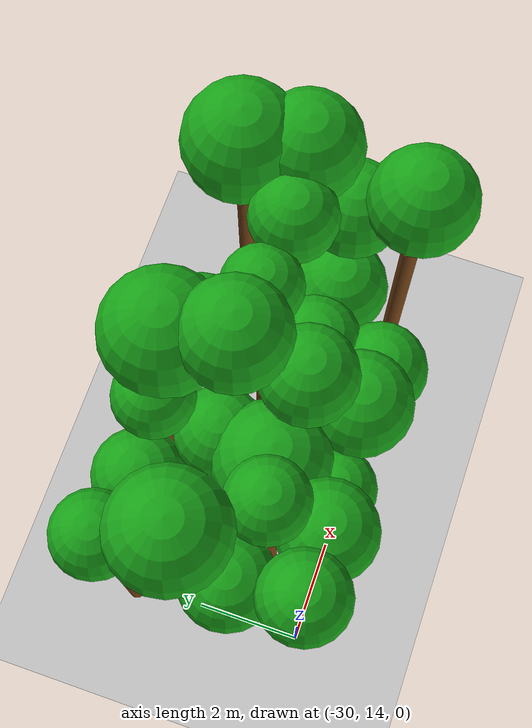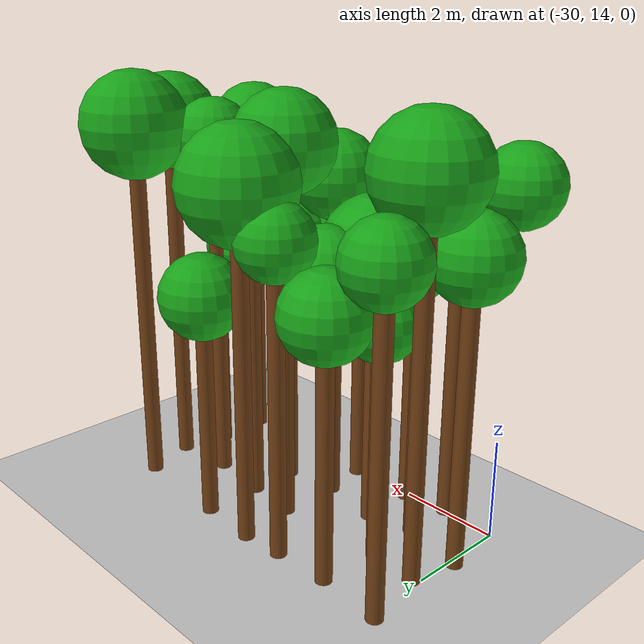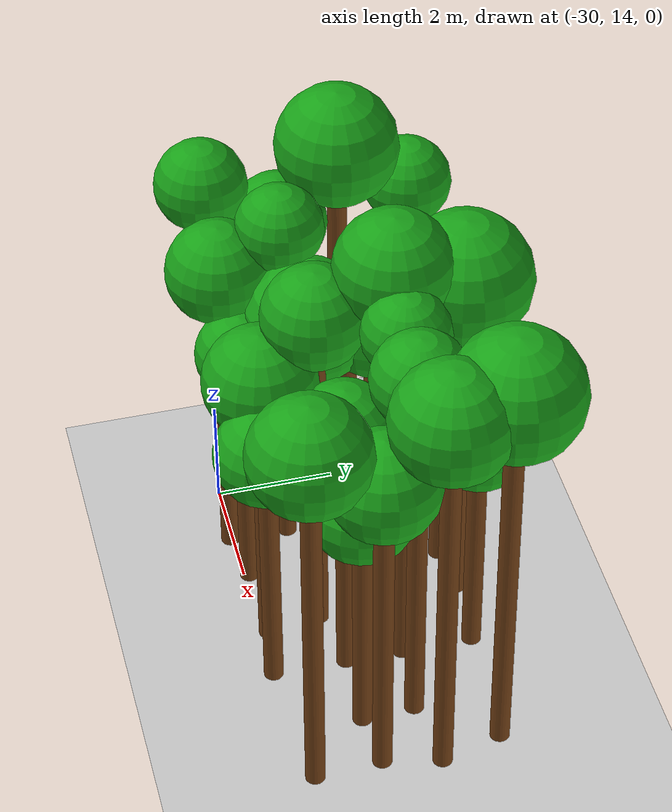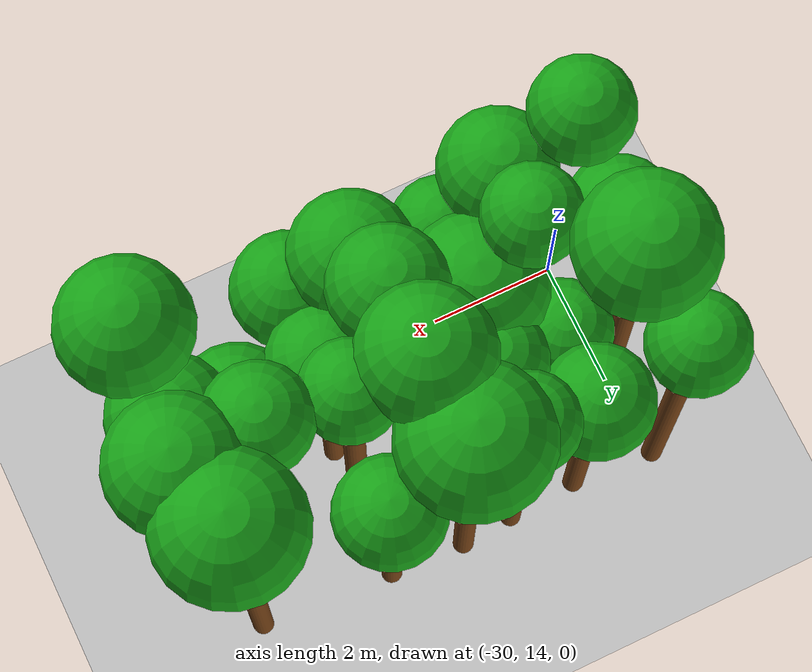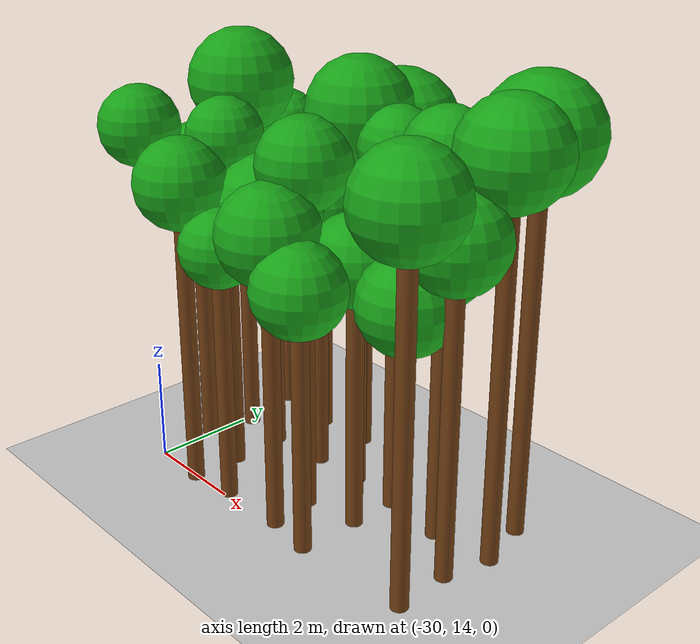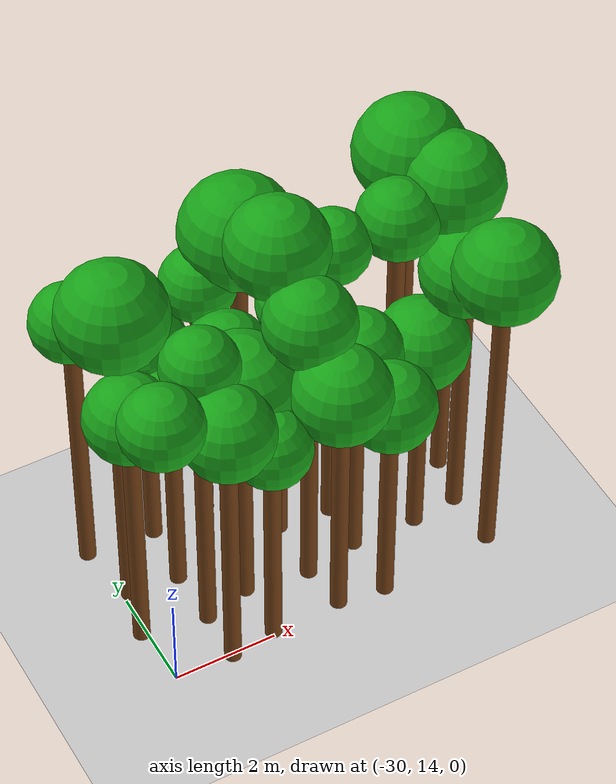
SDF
<sdf version="1.6">
 <world name="forest_world">
  <include><uri>model://sun</uri></include>
  <include><uri>model://ground_plane</uri></include>
  <model name="tree_40_leaf">
   <static>true</static>
   <pose>-30.07 13.97 6.78 0 0 0</pose>
   <link name="link">
    <collision name="collision"><geometry><sphere><radius>0.75</radius></sphere></geometry></collision>
    <visual name="visual">
     <geometry><sphere><radius>0.75</radius></sphere></geometry>
     <material><ambient>0.05 0.45 0.05 1</ambient><diffuse>0.10 0.65 0.10 1</diffuse></material>
    </visual>
   </link>
  </model>
  <model name="tree_41_trunk">
   <static>true</static>
   <pose>-30.09 15.20 2.66 0 0 0</pose>
   <link name="link">
    <collision name="collision">
     <geometry><cylinder><radius>0.16</radius><length>5.33</length></cylinder></geometry>
    </collision>
    <visual name="visual">
     <geometry><cylinder><radius>0.16</radius><length>5.33</length></cylinder></geometry>
     <material><ambient>0.35 0.20 0.05 1</ambient><diffuse>0.45 0.25 0.08 1</diffuse></material>
    </visual>
   </link>
  </model>
  <model name="tree_41_leaf">
   <static>true</static>
   <pose>-30.09 15.20 5.81 0 0 0</pose>
   <link name="link">
    <collision name="collision"><geometry><sphere><radius>0.81</radius></sphere></geometry></collision>
    <visual name="visual">
     <geometry><sphere><radius>0.81</radius></sphere></geometry>
     <material><ambient>0.05 0.45 0.05 1</ambient><diffuse>0.10 0.65 0.10 1</diffuse></material>
    </visual>
   </link>
  </model>
  <model name="tree_42_trunk">
   <static>true</static>
   <pose>-29.87 16.13 3.35 0 0 0</pose>
   <link name="link">
    <collision name="collision">
     <geometry><cylinder><radius>0.16</radius><length>6.71</length></cylinder></geometry>
    </collision>
    <visual name="visual">
     <geometry><cylinder><radius>0.16</radius><length>6.71</length></cylinder></geometry>
     <material><ambient>0.35 0.20 0.05 1</ambient><diffuse>0.45 0.25 0.08 1</diffuse></material>
    </visual>
   </link>
  </model>
  <model name="tree_42_leaf">
   <static>true</static>
   <pose>-29.87 16.13 7.31 0 0 0</pose>
   <link name="link">
    <collision name="collision"><geometry><sphere><radius>1.00</radius></sphere></geometry></collision>
    <visual name="visual">
     <geometry><sphere><radius>1.00</radius></sphere></geometry>
     <material><ambient>0.05 0.45 0.05 1</ambient><diffuse>0.10 0.65 0.10 1</diffuse></material>
    </visual>
   </link>
  </model>
  <model name="tree_43_trunk">
   <static>true</static>
   <pose>-30.13 17.35 2.88 0 0 0</pose>
   <link name="link">
    <collision name="collision">
     <geometry><cylinder><radius>0.16</radius><length>5.76</length></cylinder></geometry>
    </collision>
    <visual name="visual">
     <geometry><cylinder><radius>0.16</radius><length>5.76</length></cylinder></geometry>
     <material><ambient>0.35 0.20 0.05 1</ambient><diffuse>0.45 0.25 0.08 1</diffuse></material>
    </visual>
   </link>
  </model>
  <model name="tree_43_leaf">
   <static>true</static>
   <pose>-30.13 17.35 6.19 0 0 0</pose>
   <link name="link">
    <collision name="collision"><geometry><sphere><radius>0.73</radius></sphere></geometry></collision>
    <visual name="visual">
     <geometry><sphere><radius>0.73</radius></sphere></geometry>
     <material><ambient>0.05 0.45 0.05 1</ambient><diffuse>0.10 0.65 0.10 1</diffuse></material>
    </visual>
   </link>
  </model>
  <model name="tree_95_trunk">
   <static>true</static>
   <pose>-28.87 13.97 2.74 0 0 0</pose>
   <link name="link">
    <collision name="collision">
     <geometry><cylinder><radius>0.16</radius><length>5.47</length></cylinder></geometry>
    </collision>
    <visual name="visual">
     <geometry><cylinder><radius>0.16</radius><length>5.47</length></cylinder></geometry>
     <material><ambient>0.35 0.20 0.05 1</ambient><diffuse>0.45 0.25 0.08 1</diffuse></material>
    </visual>
   </link>
  </model>
  <model name="tree_95_leaf">
   <static>true</static>
   <pose>-28.87 13.97 5.98 0 0 0</pose>
   <link name="link">
    <collision name="collision"><geometry><sphere><radius>0.85</radius></sphere></geometry></collision>
    <visual name="visual">
     <geometry><sphere><radius>0.85</radius></sphere></geometry>
     <material><ambient>0.05 0.45 0.05 1</ambient><diffuse>0.10 0.65 0.10 1</diffuse></material>
    </visual>
   </link>
  </model>
  <model name="tree_96_trunk">
   <static>true</static>
   <pose>-28.86 14.96 3.12 0 0 0</pose>
   <link name="link">
    <collision name="collision">
     <geometry><cylinder><radius>0.16</radius><length>6.24</length></cylinder></geometry>
    </collision>
    <visual name="visual">
     <geometry><cylinder><radius>0.16</radius><length>6.24</length></cylinder></geometry>
     <material><ambient>0.35 0.20 0.05 1</ambient><diffuse>0.45 0.25 0.08 1</diffuse></material>
    </visual>
   </link>
  </model>
  <model name="tree_96_leaf">
   <static>true</static>
   <pose>-28.86 14.96 6.67 0 0 0</pose>
   <link name="link">
    <collision name="collision"><geometry><sphere><radius>0.71</radius></sphere></geometry></collision>
    <visual name="visual">
     <geometry><sphere><radius>0.71</radius></sphere></geometry>
     <material><ambient>0.05 0.45 0.05 1</ambient><diffuse>0.10 0.65 0.10 1</diffuse></material>
    </visual>
   </link>
  </model>
  <model name="tree_97_trunk">
   <static>true</static>
   <pose>-28.91 16.05 2.09 0 0 0</pose>
   <link name="link">
    <collision name="collision">
     <geometry><cylinder><radius>0.16</radius><length>4.18</length></cylinder></geometry>
    </collision>
    <visual name="visual">
     <geometry><cylinder><radius>0.16</radius><length>4.18</length></cylinder></geometry>
     <material><ambient>0.35 0.20 0.05 1</ambient><diffuse>0.45 0.25 0.08 1</diffuse></material>
    </visual>
   </link>
  </model>
  <model name="tree_97_leaf">
   <static>true</static>
   <pose>-28.91 16.05 4.61 0 0 0</pose>
   <link name="link">
    <collision name="collision"><geometry><sphere><radius>0.72</radius></sphere></geometry></collision>
    <visual name="visual">
     <geometry><sphere><radius>0.72</radius></sphere></geometry>
     <material><ambient>0.05 0.45 0.05 1</ambient><diffuse>0.10 0.65 0.10 1</diffuse></material>
    </visual>
   </link>
  </model>
  <model name="tree_98_trunk">
   <static>true</static>
   <pose>-28.81 17.25 2.24 0 0 0</pose>
   <link name="link">
    <collision name="collision">
     <geometry><cylinder><radius>0.16</radius><length>4.49</length></cylinder></geometry>
    </collision>
    <visual name="visual">
     <geometry><cylinder><radius>0.16</radius><length>4.49</length></cylinder></geometry>
     <material><ambient>0.35 0.20 0.05 1</ambient><diffuse>0.45 0.25 0.08 1</diffuse></material>
    </visual>
   </link>
  </model>
  <model name="tree_98_leaf">
   <static>true</static>
   <pose>-28.81 17.25 4.98 0 0 0</pose>
   <link name="link">
    <collision name="collision"><geometry><sphere><radius>0.82</radius></sphere></geometry></collision>
    <visual name="visual">
     <geometry><sphere><radius>0.82</radius></sphere></geometry>
     <material><ambient>0.05 0.45 0.05 1</ambient><diffuse>0.10 0.65 0.10 1</diffuse></material>
    </visual>
   </link>
  </model>
  <model name="tree_150_trunk">
   <static>true</static>
   <pose>-27.97 14.10 2.28 0 0 0</pose>
   <link name="link">
    <collision name="collision">
     <geometry><cylinder><radius>0.16</radius><length>4.56</length></cylinder></geometry>
    </collision>
    <visual name="visual">
     <geometry><cylinder><radius>0.16</radius><length>4.56</length></cylinder></geometry>
     <material><ambient>0.35 0.20 0.05 1</ambient><diffuse>0.45 0.25 0.08 1</diffuse></material>
    </visual>
   </link>
  </model>
  <model name="tree_150_leaf">
   <static>true</static>
   <pose>-27.97 14.10 5.00 0 0 0</pose>
   <link name="link">
    <collision name="collision"><geometry><sphere><radius>0.73</radius></sphere></geometry></collision>
    <visual name="visual">
     <geometry><sphere><radius>0.73</radius></sphere></geometry>
     <material><ambient>0.05 0.45 0.05 1</ambient><diffuse>0.10 0.65 0.10 1</diffuse></material>
    </visual>
   </link>
  </model>
  <model name="tree_151_trunk">
   <static>true</static>
   <pose>-27.96 15.19 2.43 0 0 0</pose>
   <link name="link">
    <collision name="collision">
     <geometry><cylinder><radius>0.16</radius><length>4.85</length></cylinder></geometry>
    </collision>
    <visual name="visual">
     <geometry><cylinder><radius>0.16</radius><length>4.85</length></cylinder></geometry>
     <material><ambient>0.35 0.20 0.05 1</ambient><diffuse>0.45 0.25 0.08 1</diffuse></material>
    </visual>
   </link>
  </model>
  <model name="tree_151_leaf">
   <static>true</static>
   <pose>-27.96 15.19 5.47 0 0 0</pose>
   <link name="link">
    <collision name="collision"><geometry><sphere><radius>1.03</radius></sphere></geometry></collision>
    <visual name="visual">
     <geometry><sphere><radius>1.03</radius></sphere></geometry>
     <material><ambient>0.05 0.45 0.05 1</ambient><diffuse>0.10 0.65 0.10 1</diffuse></material>
    </visual>
   </link>
  </model>
  <model name="tree_152_trunk">
   <static>true</static>
   <pose>-27.73 16.19 2.40 0 0 0</pose>
   <link name="link">
    <collision name="collision">
     <geometry><cylinder><radius>0.16</radius><length>4.81</length></cylinder></geometry>
    </collision>
    <visual name="visual">
     <geometry><cylinder><radius>0.16</radius><length>4.81</length></cylinder></geometry>
     <material><ambient>0.35 0.20 0.05 1</ambient><diffuse>0.45 0.25 0.08 1</diffuse></material>
    </visual>
   </link>
  </model>
  <model name="tree_152_leaf">
   <static>true</static>
   <pose>-27.73 16.19 5.28 0 0 0</pose>
   <link name="link">
    <collision name="collision"><geometry><sphere><radius>0.79</radius></sphere></geometry></collision>
    <visual name="visual">
     <geometry><sphere><radius>0.79</radius></sphere></geometry>
     <material><ambient>0.05 0.45 0.05 1</ambient><diffuse>0.10 0.65 0.10 1</diffuse></material>
    </visual>
   </link>
  </model>
  <model name="tree_153_trunk">
   <static>true</static>
   <pose>-27.69 17.32 2.78 0 0 0</pose>
   <link name="link">
    <collision name="collision">
     <geometry><cylinder><radius>0.16</radius><length>5.55</length></cylinder></geometry>
    </collision>
    <visual name="visual">
     <geometry><cylinder><radius>0.16</radius><length>5.55</length></cylinder></geometry>
     <material><ambient>0.35 0.20 0.05 1</ambient><diffuse>0.45 0.25 0.08 1</diffuse></material>
    </visual>
   </link>
  </model>
  <model name="tree_153_leaf">
   <static>true</static>
   <pose>-27.69 17.32 5.98 0 0 0</pose>
   <link name="link">
    <collision name="collision"><geometry><sphere><radius>0.71</radius></sphere></geometry></collision>
    <visual name="visual">
     <geometry><sphere><radius>0.71</radius></sphere></geometry>
     <material><ambient>0.05 0.45 0.05 1</ambient><diffuse>0.10 0.65 0.10 1</diffuse></material>
    </visual>
   </link>
  </model>
  <model name="tree_205_trunk">
   <static>true</static>
   <pose>-26.61 14.12 2.54 0 0 0</pose>
   <link name="link">
    <collision name="collision">
     <geometry><cylinder><radius>0.16</radius><length>5.07</length></cylinder></geometry>
    </collision>
    <visual name="visual">
     <geometry><cylinder><radius>0.16</radius><length>5.07</length></cylinder></geometry>
     <material><ambient>0.35 0.20 0.05 1</ambient><diffuse>0.45 0.25 0.08 1</diffuse></material>
    </visual>
   </link>
  </model>
  <model name="tree_205_leaf">
   <static>true</static>
   <pose>-26.61 14.12 5.61 0 0 0</pose>
   <link name="link">
    <collision name="collision"><geometry><sphere><radius>0.91</radius></sphere></geometry></collision>
    <visual name="visual">
     <geometry><sphere><radius>0.91</radius></sphere></geometry>
     <material><ambient>0.05 0.45 0.05 1</ambient><diffuse>0.10 0.65 0.10 1</diffuse></material>
    </visual>
   </link>
  </model>
  <model name="tree_206_trunk">
   <static>true</static>
   <pose>-26.74 15.01 3.05 0 0 0</pose>
   <link name="link">
    <collision name="collision">
     <geometry><cylinder><radius>0.16</radius><length>6.10</length></cylinder></geometry>
    </collision>
    <visual name="visual">
     <geometry><cylinder><radius>0.16</radius><length>6.10</length></cylinder></geometry>
     <material><ambient>0.35 0.20 0.05 1</ambient><diffuse>0.45 0.25 0.08 1</diffuse></material>
    </visual>
   </link>
  </model>
  <model name="tree_206_leaf">
   <static>true</static>
   <pose>-26.74 15.01 6.61 0 0 0</pose>
   <link name="link">
    <collision name="collision"><geometry><sphere><radius>0.84</radius></sphere></geometry></collision>
    <visual name="visual">
     <geometry><sphere><radius>0.84</radius></sphere></geometry>
     <material><ambient>0.05 0.45 0.05 1</ambient><diffuse>0.10 0.65 0.10 1</diffuse></material>
    </visual>
   </link>
  </model>
  <model name="tree_207_trunk">
   <static>true</static>
   <pose>-26.70 16.23 3.38 0 0 0</pose>
   <link name="link">
    <collision name="collision">
     <geometry><cylinder><radius>0.16</radius><length>6.77</length></cylinder></geometry>
    </collision>
    <visual name="visual">
     <geometry><cylinder><radius>0.16</radius><length>6.77</length></cylinder></geometry>
     <material><ambient>0.35 0.20 0.05 1</ambient><diffuse>0.45 0.25 0.08 1</diffuse></material>
    </visual>
   </link>
  </model>
  <model name="tree_207_leaf">
   <static>true</static>
   <pose>-26.70 16.23 7.33 0 0 0</pose>
   <link name="link">
    <collision name="collision"><geometry><sphere><radius>0.95</radius></sphere></geometry></collision>
    <visual name="visual">
     <geometry><sphere><radius>0.95</radius></sphere></geometry>
     <material><ambient>0.05 0.45 0.05 1</ambient><diffuse>0.10 0.65 0.10 1</diffuse></material>
    </visual>
   </link>
  </model>
  <model name="tree_208_trunk">
   <static>true</static>
   <pose>-26.85 17.39 3.07 0 0 0</pose>
   <link name="link">
    <collision name="collision">
     <geometry><cylinder><radius>0.16</radius><length>6.14</length></cylinder></geometry>
    </collision>
    <visual name="visual">
     <geometry><cylinder><radius>0.16</radius><length>6.14</length></cylinder></geometry>
     <material><ambient>0.35 0.20 0.05 1</ambient><diffuse>0.45 0.25 0.08 1</diffuse></material>
    </visual>
   </link>
  </model>
  <model name="tree_208_leaf">
   <static>true</static>
   <pose>-26.85 17.39 6.79 0 0 0</pose>
   <link name="link">
    <collision name="collision"><geometry><sphere><radius>1.08</radius></sphere></geometry></collision>
    <visual name="visual">
     <geometry><sphere><radius>1.08</radius></sphere></geometry>
     <material><ambient>0.05 0.45 0.05 1</ambient><diffuse>0.10 0.65 0.10 1</diffuse></material>
    </visual>
   </link>
  </model>
  <model name="tree_260_trunk">
   <static>true</static>
   <pose>-25.70 14.00 2.23 0 0 0</pose>
   <link name="link">
    <collision name="collision">
     <geometry><cylinder><radius>0.16</radius><length>4.45</length></cylinder></geometry>
    </collision>
    <visual name="visual">
     <geometry><cylinder><radius>0.16</radius><length>4.45</length></cylinder></geometry>
     <material><ambient>0.35 0.20 0.05 1</ambient><diffuse>0.45 0.25 0.08 1</diffuse></material>
    </visual>
   </link>
  </model>
  <model name="tree_260_leaf">
   <static>true</static>
   <pose>-25.70 14.00 4.95 0 0 0</pose>
   <link name="link">
    <collision name="collision"><geometry><sphere><radius>0.83</radius></sphere></geometry></collision>
    <visual name="visual">
     <geometry><sphere><radius>0.83</radius></sphere></geometry>
     <material><ambient>0.05 0.45 0.05 1</ambient><diffuse>0.10 0.65 0.10 1</diffuse></material>
    </visual>
   </link>
  </model>
  <model name="tree_261_trunk">
   <static>true</static>
   <pose>-25.68 15.21 2.33 0 0 0</pose>
   <link name="link">
    <collision name="collision">
     <geometry><cylinder><radius>0.16</radius><length>4.66</length></cylinder></geometry>
    </collision>
    <visual name="visual">
     <geometry><cylinder><radius>0.16</radius><length>4.66</length></cylinder></geometry>
     <material><ambient>0.35 0.20 0.05 1</ambient><diffuse>0.45 0.25 0.08 1</diffuse></material>
    </visual>
   </link>
  </model>
  <model name="tree_261_leaf">
   <static>true</static>
   <pose>-25.68 15.21 5.16 0 0 0</pose>
   <link name="link">
    <collision name="collision"><geometry><sphere><radius>0.83</radius></sphere></geometry></collision>
    <visual name="visual">
     <geometry><sphere><radius>0.83</radius></sphere></geometry>
     <material><ambient>0.05 0.45 0.05 1</ambient><diffuse>0.10 0.65 0.10 1</diffuse></material>
    </visual>
   </link>
  </model>
  <model name="tree_262_trunk">
   <static>true</static>
   <pose>-25.67 16.15 3.25 0 0 0</pose>
   <link name="link">
    <collision name="collision">
     <geometry><cylinder><radius>0.16</radius><length>6.51</length></cylinder></geometry>
    </collision>
    <visual name="visual">
     <geometry><cylinder><radius>0.16</radius><length>6.51</length></cylinder></geometry>
     <material><ambient>0.35 0.20 0.05 1</ambient><diffuse>0.45 0.25 0.08 1</diffuse></material>
    </visual>
   </link>
  </model>
  <model name="tree_262_leaf">
   <static>true</static>
   <pose>-25.67 16.15 6.93 0 0 0</pose>
   <link name="link">
    <collision name="collision"><geometry><sphere><radius>0.70</radius></sphere></geometry></collision>
    <visual name="visual">
     <geometry><sphere><radius>0.70</radius></sphere></geometry>
     <material><ambient>0.05 0.45 0.05 1</ambient><diffuse>0.10 0.65 0.10 1</diffuse></material>
    </visual>
   </link>
  </model>
  <model name="tree_263_trunk">
   <static>true</static>
   <pose>-25.66 17.33 2.01 0 0 0</pose>
   <link name="link">
    <collision name="collision">
     <geometry><cylinder><radius>0.16</radius><length>4.02</length></cylinder></geometry>
    </collision>
    <visual name="visual">
     <geometry><cylinder><radius>0.16</radius><length>4.02</length></cylinder></geometry>
     <material><ambient>0.35 0.20 0.05 1</ambient><diffuse>0.45 0.25 0.08 1</diffuse></material>
    </visual>
   </link>
  </model>
  <model name="tree_263_leaf">
   <static>true</static>
   <pose>-25.66 17.33 4.51 0 0 0</pose>
   <link name="link">
    <collision name="collision"><geometry><sphere><radius>0.82</radius></sphere></geometry></collision>
    <visual name="visual">
     <geometry><sphere><radius>0.82</radius></sphere></geometry>
     <material><ambient>0.05 0.45 0.05 1</ambient><diffuse>0.10 0.65 0.10 1</diffuse></material>
    </visual>
   </link>
  </model>
  <model name="tree_316_trunk">
   <static>true</static>
   <pose>-24.40 15.16 2.14 0 0 0</pose>
   <link name="link">
    <collision name="collision">
     <geometry><cylinder><radius>0.16</radius><length>4.27</length></cylinder></geometry>
    </collision>
    <visual name="visual">
     <geometry><cylinder><radius>0.16</radius><length>4.27</length></cylinder></geometry>
     <material><ambient>0.35 0.20 0.05 1</ambient><diffuse>0.45 0.25 0.08 1</diffuse></material>
    </visual>
   </link>
  </model>
  <model name="tree_316_leaf">
   <static>true</static>
   <pose>-24.40 15.16 4.80 0 0 0</pose>
   <link name="link">
    <collision name="collision"><geometry><sphere><radius>0.88</radius></sphere></geometry></collision>
    <visual name="visual">
     <geometry><sphere><radius>0.88</radius></sphere></geometry>
     <material><ambient>0.05 0.45 0.05 1</ambient><diffuse>0.10 0.65 0.10 1</diffuse></material>
    </visual>
   </link>
  </model>
  <model name="tree_317_trunk">
   <static>true</static>
   <pose>-24.45 16.03 3.33 0 0 0</pose>
   <link name="link">
    <collision name="collision">
     <geometry><cylinder><radius>0.16</radius><length>6.67</length></cylinder></geometry>
    </collision>
    <visual name="visual">
     <geometry><cylinder><radius>0.16</radius><length>6.67</length></cylinder></geometry>
     <material><ambient>0.35 0.20 0.05 1</ambient><diffuse>0.45 0.25 0.08 1</diffuse></material>
    </visual>
   </link>
  </model>
  <model name="tree_317_leaf">
   <static>true</static>
   <pose>-24.45 16.03 7.12 0 0 0</pose>
   <link name="link">
    <collision name="collision"><geometry><sphere><radius>0.76</radius></sphere></geometry></collision>
    <visual name="visual">
     <geometry><sphere><radius>0.76</radius></sphere></geometry>
     <material><ambient>0.05 0.45 0.05 1</ambient><diffuse>0.10 0.65 0.10 1</diffuse></material>
    </visual>
   </link>
  </model>
  <model name="tree_370_trunk">
   <static>true</static>
   <pose>-23.43 14.15 3.21 0 0 0</pose>
   <link name="link">
    <collision name="collision">
     <geometry><cylinder><radius>0.16</radius><length>6.42</length></cylinder></geometry>
    </collision>
    <visual name="visual">
     <geometry><cylinder><radius>0.16</radius><length>6.42</length></cylinder></geometry>
     <material><ambient>0.35 0.20 0.05 1</ambient><diffuse>0.45 0.25 0.08 1</diffuse></material>
    </visual>
   </link>
  </model>
  <model name="tree_370_leaf">
   <static>true</static>
   <pose>-23.43 14.15 6.98 0 0 0</pose>
   <link name="link">
    <collision name="collision"><geometry><sphere><radius>0.94</radius></sphere></geometry></collision>
    <visual name="visual">
     <geometry><sphere><radius>0.94</radius></sphere></geometry>
     <material><ambient>0.05 0.45 0.05 1</ambient><diffuse>0.10 0.65 0.10 1</diffuse></material>
    </visual>
   </link>
  </model>
  <model name="tree_371_trunk">
   <static>true</static>
   <pose>-23.48 15.25 2.79 0 0 0</pose>
   <link name="link">
    <collision name="collision">
     <geometry><cylinder><radius>0.16</radius><length>5.57</length></cylinder></geometry>
    </collision>
    <visual name="visual">
     <geometry><cylinder><radius>0.16</radius><length>5.57</length></cylinder></geometry>
     <material><ambient>0.35 0.20 0.05 1</ambient><diffuse>0.45 0.25 0.08 1</diffuse></material>
    </visual>
   </link>
  </model>
  <model name="tree_371_leaf">
   <static>true</static>
   <pose>-23.48 15.25 6.10 0 0 0</pose>
   <link name="link">
    <collision name="collision"><geometry><sphere><radius>0.87</radius></sphere></geometry></collision>
    <visual name="visual">
     <geometry><sphere><radius>0.87</radius></sphere></geometry>
     <material><ambient>0.05 0.45 0.05 1</ambient><diffuse>0.10 0.65 0.10 1</diffuse></material>
    </visual>
   </link>
  </model>
  <model name="tree_372_trunk">
   <static>true</static>
   <pose>-23.27 16.18 3.38 0 0 0</pose>
   <link name="link">
    <collision name="collision">
     <geometry><cylinder><radius>0.16</radius><length>6.75</length></cylinder></geometry>
    </collision>
    <visual name="visual">
     <geometry><cylinder><radius>0.16</radius><length>6.75</length></cylinder></geometry>
     <material><ambient>0.35 0.20 0.05 1</ambient><diffuse>0.45 0.25 0.08 1</diffuse></material>
    </visual>
   </link>
  </model>
  <model name="tree_372_leaf">
   <static>true</static>
   <pose>-23.27 16.18 7.32 0 0 0</pose>
   <link name="link">
    <collision name="collision"><geometry><sphere><radius>0.95</radius></sphere></geometry></collision>
    <visual name="visual">
     <geometry><sphere><radius>0.95</radius></sphere></geometry>
     <material><ambient>0.05 0.45 0.05 1</ambient><diffuse>0.10 0.65 0.10 1</diffuse></material>
    </visual>
   </link>
  </model>
  <model name="tree_373_trunk">
   <static>true</static>
   <pose>-23.55 17.20 3.37 0 0 0</pose>
   <link name="link">
    <collision name="collision">
     <geometry><cylinder><radius>0.16</radius><length>6.74</length></cylinder></geometry>
    </collision>
    <visual name="visual">
     <geometry><cylinder><radius>0.16</radius><length>6.74</length></cylinder></geometry>
     <material><ambient>0.35 0.20 0.05 1</ambient><diffuse>0.45 0.25 0.08 1</diffuse></material>
    </visual>
   </link>
  </model>
  <model name="tree_373_leaf">
   <static>true</static>
   <pose>-23.55 17.20 7.37 0 0 0</pose>
   <link name="link">
    <collision name="collision"><geometry><sphere><radius>1.04</radius></sphere></geometry></collision>
    <visual name="visual">
     <geometry><sphere><radius>1.04</radius></sphere></geometry>
     <material><ambient>0.05 0.45 0.05 1</ambient><diffuse>0.10 0.65 0.10 1</diffuse></material>
    </visual>
   </link>
  </model>
 </world>
</sdf>
